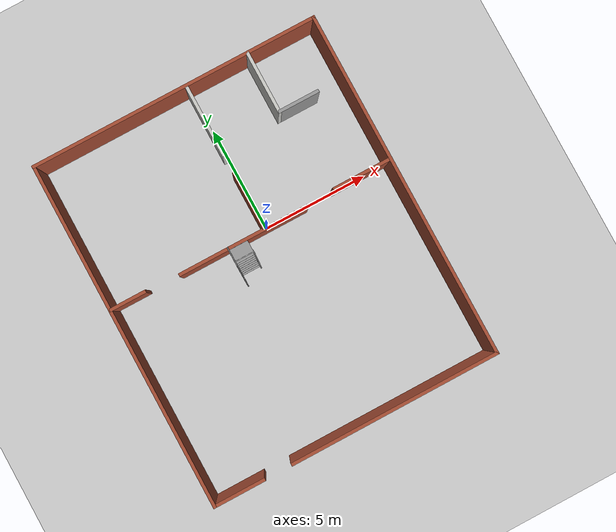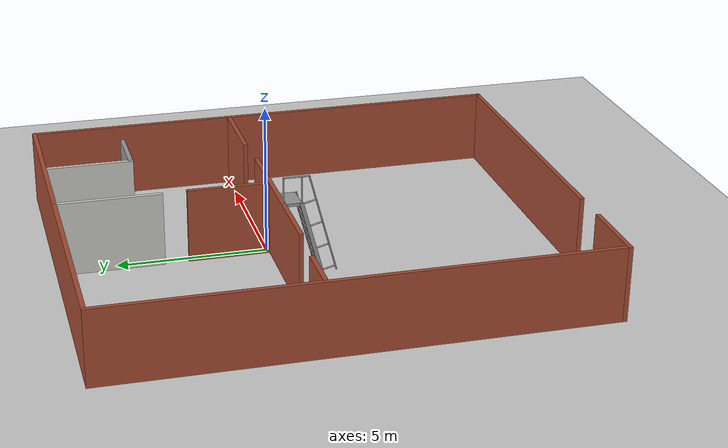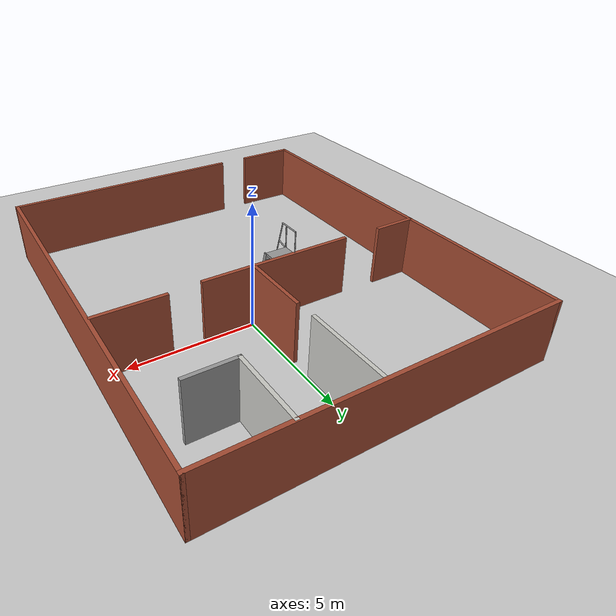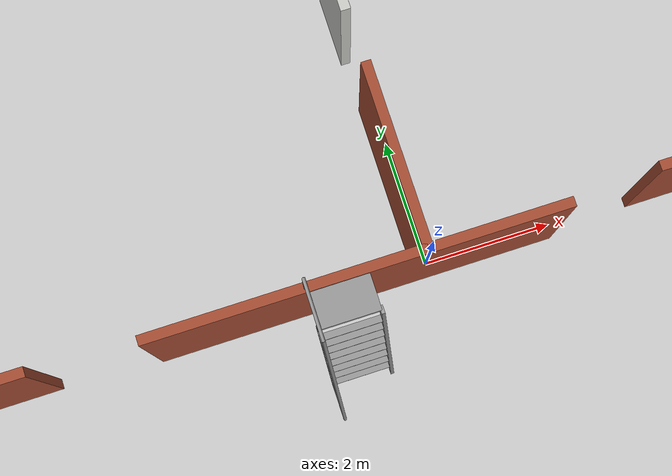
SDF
<sdf version="1.7">
 <world name="default">
  <light name="sun" type="directional">
   <pose>0 0 10 0 -0 0</pose>
   <diffuse>0.8 0.8 0.8 1</diffuse>
   <specular>0.2 0.2 0.2 1</specular>
   <attenuation>
    <range>1000</range>
    <constant>0.9</constant>
    <linear>0.01</linear>
    <quadratic>0.001</quadratic>
   </attenuation>
   <direction>-0.5 0.1 -0.9</direction>
   <spot><inner_angle>0</inner_angle><outer_angle>0</outer_angle><falloff>0</falloff></spot>
  </light>
  <model name="ground_plane">
   <static>1</static>
   <link name="link">
    <collision name="collision">
     <geometry><plane><normal>0 0 1</normal><size>100 100</size></plane></geometry>
     <surface>
      <contact><collide_bitmask>65535</collide_bitmask></contact>
      <friction><ode><mu>100</mu><mu2>50</mu2></ode></friction>
     </surface>
    </collision>
    <visual name="visual">
     <cast_shadows>0</cast_shadows>
     <geometry><plane><normal>0 0 1</normal><size>100 100</size></plane></geometry>
     <material>
      <script><uri>file://media/materials/scripts/gazebo.material</uri><name>Gazebo/Grey</name></script>
     </material>
    </visual>
   </link>
  </model>
  <gravity>0 0 -9.8</gravity>
  <magnetic_field>6e-06 2.3e-05 -4.2e-05</magnetic_field>
  <atmosphere type="adiabatic"/>
  <physics type="ode">
   <max_step_size>0.001</max_step_size>
   <real_time_factor>1</real_time_factor>
   <real_time_update_rate>1000</real_time_update_rate>
  </physics>
  <scene><ambient>0.4 0.4 0.4 1</ambient><background>0.7 0.7 0.7 1</background><shadows>1</shadows></scene>
  <spherical_coordinates>
   <surface_model>EARTH_WGS84</surface_model>
   <latitude_deg>0</latitude_deg>
   <longitude_deg>0</longitude_deg>
   <elevation>0</elevation>
   <heading_deg>0</heading_deg>
  </spherical_coordinates>
  <model name="TN_Robot_House">
   <pose>-0.769563 -1.27313 0 0 -0 0</pose>
   <link name="Wall_10">
    <collision name="Wall_10_Collision">
     <geometry><box><size>2.5 0.15 2.5</size></box></geometry>
     <pose>0 0 1.25 0 -0 0</pose>
    </collision>
    <visual name="Wall_10_Visual">
     <pose>0 0 1.25 0 -0 0</pose>
     <geometry><box><size>2.5 0.15 2.5</size></box></geometry>
     <material>
      <script><uri>file://media/materials/scripts/gazebo.material</uri><name>Gazebo/Bricks</name></script>
      <ambient>1 1 1 1</ambient>
     </material>
     <meta><layer>0</layer></meta>
    </visual>
    <pose>-5.625 -8.175 0 0 -0 0</pose>
   </link>
   <link name="Wall_12">
    <collision name="Wall_12_Collision">
     <geometry><box><size>10 0.15 2.5</size></box></geometry>
     <pose>0 0 1.25 0 -0 0</pose>
    </collision>
    <visual name="Wall_12_Visual">
     <pose>0 0 1.25 0 -0 0</pose>
     <geometry><box><size>10 0.15 2.5</size></box></geometry>
     <material>
      <script><uri>file://media/materials/scripts/gazebo.material</uri><name>Gazebo/Bricks</name></script>
      <ambient>1 1 1 1</ambient>
     </material>
     <meta><layer>0</layer></meta>
    </visual>
    <pose>1.875 -8.175 0 0 -0 3.14159</pose>
   </link>
   <link name="Wall_14">
    <collision name="Wall_14_Collision">
     <geometry><box><size>1.75 0.15 2.5</size></box></geometry>
     <pose>0 0 1.25 0 -0 0</pose>
    </collision>
    <visual name="Wall_14_Visual">
     <pose>0 0 1.25 0 -0 0</pose>
     <geometry><box><size>1.75 0.15 2.5</size></box></geometry>
     <material>
      <script><uri>file://media/materials/scripts/gazebo.material</uri><name>Gazebo/Bricks</name></script>
      <ambient>1 1 1 1</ambient>
     </material>
     <meta><layer>0</layer></meta>
    </visual>
    <pose>-5.95435 1.21128 0 0 -0 0</pose>
   </link>
   <link name="Wall_16">
    <collision name="Wall_16_Collision">
     <geometry><box><size>6.25 0.15 2.5</size></box></geometry>
     <pose>0 0 1.25 0 -0 0</pose>
    </collision>
    <visual name="Wall_16_Visual">
     <pose>0 0 1.25 0 -0 0</pose>
     <geometry><box><size>6.25 0.15 2.5</size></box></geometry>
     <material>
      <script><uri>file://media/materials/scripts/gazebo.material</uri><name>Gazebo/Bricks</name></script>
      <ambient>1 1 1 1</ambient>
     </material>
     <meta><layer>0</layer></meta>
    </visual>
    <pose>-0.397549 1.14092 0 0 -0 0</pose>
   </link>
   <link name="Wall_18">
    <collision name="Wall_18_Collision">
     <geometry><box><size>2.75 0.15 2.5</size></box></geometry>
     <pose>0 0 1.25 0 -0 0</pose>
    </collision>
    <visual name="Wall_18_Visual">
     <pose>0 0 1.25 0 -0 0</pose>
     <geometry><box><size>2.75 0.15 2.5</size></box></geometry>
     <material>
      <script><uri>file://media/materials/scripts/gazebo.material</uri><name>Gazebo/Bricks</name></script>
      <ambient>1 1 1 1</ambient>
     </material>
     <meta><layer>0</layer></meta>
    </visual>
    <pose>5.38071 1.24645 0 0 -0 0</pose>
   </link>
   <link name="Wall_22">
    <collision name="Wall_22_Collision">
     <geometry><box><size>3.5 0.15 2.5</size></box></geometry>
     <pose>0 0 1.25 0 -0 0</pose>
    </collision>
    <visual name="Wall_22_Visual">
     <pose>0 0 1.25 0 -0 0</pose>
     <geometry><box><size>3.5 0.15 2.5</size></box></geometry>
     <material>
      <script><uri>file://media/materials/scripts/gazebo.material</uri><name>Gazebo/CeilingTiled</name></script>
      <ambient>1 1 1 1</ambient>
     </material>
     <meta><layer>0</layer></meta>
    </visual>
    <pose>0.578652 6.45667 0 0 -0 -1.5708</pose>
   </link>
   <link name="Wall_24">
    <collision name="Wall_24_Collision">
     <geometry><box><size>2.75 0.15 2.5</size></box></geometry>
     <pose>0 0 1.25 0 -0 0</pose>
    </collision>
    <visual name="Wall_24_Visual">
     <pose>0 0 1.25 0 -0 0</pose>
     <geometry><box><size>2.75 0.15 2.5</size></box></geometry>
     <material>
      <script><uri>file://media/materials/scripts/gazebo.material</uri><name>Gazebo/Bricks</name></script>
      <ambient>1 1 1 1</ambient>
     </material>
     <meta><layer>0</layer></meta>
    </visual>
    <pose>0.61383 2.53986 0 0 -0 -1.5708</pose>
   </link>
   <link name="Wall_26">
    <collision name="Wall_26_Collision">
     <geometry><box><size>3 0.15 2.5</size></box></geometry>
     <pose>0 0 1.25 0 -0 0</pose>
    </collision>
    <visual name="Wall_26_Visual">
     <pose>0 0 1.25 0 -0 0</pose>
     <geometry><box><size>3 0.15 2.5</size></box></geometry>
     <material>
      <script><uri>file://media/materials/scripts/gazebo.material</uri><name>Gazebo/CeilingTiled</name></script>
      <ambient>1 1 1 1</ambient>
     </material>
     <meta><layer>0</layer></meta>
    </visual>
    <pose>3.56885 6.70667 0 0 -0 -1.5708</pose>
   </link>
   <link name="Wall_27">
    <collision name="Wall_27_Collision">
     <geometry><box><size>2 0.15 2.5</size></box></geometry>
     <pose>0 0 1.25 0 -0 0</pose>
    </collision>
    <visual name="Wall_27_Visual">
     <pose>0 0 1.25 0 -0 0</pose>
     <geometry><box><size>2 0.15 2.5</size></box></geometry>
     <material>
      <script><uri>file://media/materials/scripts/gazebo.material</uri><name>Gazebo/Grey</name></script>
      <ambient>1 1 1 1</ambient>
     </material>
     <meta><layer>0</layer></meta>
    </visual>
    <pose>4.49385 5.28167 0 0 -0 0</pose>
   </link>
   <link name="Wall_3">
    <collision name="Wall_3_Collision">
     <geometry><box><size>16.5 0.15 2.5</size></box></geometry>
     <pose>0 0 1.25 0 -0 0</pose>
    </collision>
    <visual name="Wall_3_Visual">
     <pose>0 0 1.25 0 -0 0</pose>
     <geometry><box><size>16.5 0.15 2.5</size></box></geometry>
     <material>
      <script><uri>file://media/materials/scripts/gazebo.material</uri><name>Gazebo/Bricks</name></script>
      <ambient>1 1 1 1</ambient>
     </material>
     <meta><layer>0</layer></meta>
    </visual>
    <pose>-6.8 0 0 0 -0 1.5708</pose>
   </link>
   <link name="Wall_4">
    <collision name="Wall_4_Collision">
     <geometry><box><size>13.75 0.15 2.5</size></box></geometry>
     <pose>0 0 1.25 0 -0 0</pose>
    </collision>
    <visual name="Wall_4_Visual">
     <pose>0 0 1.25 0 -0 0</pose>
     <geometry><box><size>13.75 0.15 2.5</size></box></geometry>
     <material>
      <script><uri>file://media/materials/scripts/gazebo.material</uri><name>Gazebo/Bricks</name></script>
      <ambient>1 1 1 1</ambient>
     </material>
     <meta><layer>0</layer></meta>
    </visual>
    <pose>-0 8.175 0 0 -0 0</pose>
   </link>
   <link name="Wall_5">
    <collision name="Wall_5_Collision">
     <geometry><box><size>16.5 0.15 2.5</size></box></geometry>
     <pose>0 0 1.25 0 -0 0</pose>
    </collision>
    <visual name="Wall_5_Visual">
     <pose>0 0 1.25 0 -0 0</pose>
     <geometry><box><size>16.5 0.15 2.5</size></box></geometry>
     <material>
      <script><uri>file://media/materials/scripts/gazebo.material</uri><name>Gazebo/Bricks</name></script>
      <ambient>1 1 1 1</ambient>
     </material>
     <meta><layer>0</layer></meta>
    </visual>
    <pose>6.8 0 0 0 -0 -1.5708</pose>
   </link>
   <static>1</static>
  </model>
  <model name="ladder_75deg_1rails">
   <static>1</static>
   <link name="step0">
    <pose>0 0.071453 0.266667 0 -0 0</pose>
    <inertial>
     <mass>9.75482</mass>
     <inertia>
      <ixx>0.00957124</ixx>
      <iyy>0.65963</iyy>
      <izz>0.666842</izz>
      <ixy>0</ixy>
      <ixz>0</ixz>
      <iyz>0</iyz>
     </inertia>
    </inertial>
    <collision name="collision"><geometry><box><size>0.9 0.1016 0.0381</size></box></geometry></collision>
    <visual name="visual">
     <geometry><box><size>0.9 0.1016 0.0381</size></box></geometry>
     <material>
      <script><uri>file://media/materials/scripts/gazebo.material</uri><name>Gazebo/Grey</name></script>
     </material>
    </visual>
   </link>
   <link name="step1">
    <pose>0 0.142906 0.533333 0 -0 0</pose>
    <inertial>
     <mass>9.75482</mass>
     <inertia>
      <ixx>0.00957124</ixx>
      <iyy>0.65963</iyy>
      <izz>0.666842</izz>
      <ixy>0</ixy>
      <ixz>0</ixz>
      <iyz>0</iyz>
     </inertia>
    </inertial>
    <collision name="collision"><geometry><box><size>0.9 0.1016 0.0381</size></box></geometry></collision>
    <visual name="visual">
     <geometry><box><size>0.9 0.1016 0.0381</size></box></geometry>
     <material>
      <script><uri>file://media/materials/scripts/gazebo.material</uri><name>Gazebo/Grey</name></script>
     </material>
    </visual>
   </link>
   <link name="step2">
    <pose>0 0.214359 0.8 0 -0 0</pose>
    <inertial>
     <mass>9.75482</mass>
     <inertia>
      <ixx>0.00957124</ixx>
      <iyy>0.65963</iyy>
      <izz>0.666842</izz>
      <ixy>0</ixy>
      <ixz>0</ixz>
      <iyz>0</iyz>
     </inertia>
    </inertial>
    <collision name="collision"><geometry><box><size>0.9 0.1016 0.0381</size></box></geometry></collision>
    <visual name="visual">
     <geometry><box><size>0.9 0.1016 0.0381</size></box></geometry>
     <material>
      <script><uri>file://media/materials/scripts/gazebo.material</uri><name>Gazebo/Grey</name></script>
     </material>
    </visual>
   </link>
   <link name="step3">
    <pose>0 0.285812 1.06667 0 -0 0</pose>
    <inertial>
     <mass>9.75482</mass>
     <inertia>
      <ixx>0.00957124</ixx>
      <iyy>0.65963</iyy>
      <izz>0.666842</izz>
      <ixy>0</ixy>
      <ixz>0</ixz>
      <iyz>0</iyz>
     </inertia>
    </inertial>
    <collision name="collision"><geometry><box><size>0.9 0.1016 0.0381</size></box></geometry></collision>
    <visual name="visual">
     <geometry><box><size>0.9 0.1016 0.0381</size></box></geometry>
     <material>
      <script><uri>file://media/materials/scripts/gazebo.material</uri><name>Gazebo/Grey</name></script>
     </material>
    </visual>
   </link>
   <link name="step4">
    <pose>0 0.357266 1.33333 0 -0 0</pose>
    <inertial>
     <mass>9.75482</mass>
     <inertia>
      <ixx>0.00957124</ixx>
      <iyy>0.65963</iyy>
      <izz>0.666842</izz>
      <ixy>0</ixy>
      <ixz>0</ixz>
      <iyz>0</iyz>
     </inertia>
    </inertial>
    <collision name="collision"><geometry><box><size>0.9 0.1016 0.0381</size></box></geometry></collision>
    <visual name="visual">
     <geometry><box><size>0.9 0.1016 0.0381</size></box></geometry>
     <material>
      <script><uri>file://media/materials/scripts/gazebo.material</uri><name>Gazebo/Grey</name></script>
     </material>
    </visual>
   </link>
   <link name="step5">
    <pose>0 0.428719 1.6 0 -0 0</pose>
    <inertial>
     <mass>9.75482</mass>
     <inertia>
      <ixx>0.00957124</ixx>
      <iyy>0.65963</iyy>
      <izz>0.666842</izz>
      <ixy>0</ixy>
      <ixz>0</ixz>
      <iyz>0</iyz>
     </inertia>
    </inertial>
    <collision name="collision"><geometry><box><size>0.9 0.1016 0.0381</size></box></geometry></collision>
    <visual name="visual">
     <geometry><box><size>0.9 0.1016 0.0381</size></box></geometry>
     <material>
      <script><uri>file://media/materials/scripts/gazebo.material</uri><name>Gazebo/Grey</name></script>
     </material>
    </visual>
   </link>
   <link name="step6">
    <pose>0 0.500172 1.86667 0 -0 0</pose>
    <inertial>
     <mass>9.75482</mass>
     <inertia>
      <ixx>0.00957124</ixx>
      <iyy>0.65963</iyy>
      <izz>0.666842</izz>
      <ixy>0</ixy>
      <ixz>0</ixz>
      <iyz>0</iyz>
     </inertia>
    </inertial>
    <collision name="collision"><geometry><box><size>0.9 0.1016 0.0381</size></box></geometry></collision>
    <visual name="visual">
     <geometry><box><size>0.9 0.1016 0.0381</size></box></geometry>
     <material>
      <script><uri>file://media/materials/scripts/gazebo.material</uri><name>Gazebo/Grey</name></script>
     </material>
    </visual>
   </link>
   <link name="step7">
    <pose>0 0.571625 2.13333 0 -0 0</pose>
    <inertial>
     <mass>9.75482</mass>
     <inertia>
      <ixx>0.00957124</ixx>
      <iyy>0.65963</iyy>
      <izz>0.666842</izz>
      <ixy>0</ixy>
      <ixz>0</ixz>
      <iyz>0</iyz>
     </inertia>
    </inertial>
    <collision name="collision"><geometry><box><size>0.9 0.1016 0.0381</size></box></geometry></collision>
    <visual name="visual">
     <geometry><box><size>0.9 0.1016 0.0381</size></box></geometry>
     <material>
      <script><uri>file://media/materials/scripts/gazebo.material</uri><name>Gazebo/Grey</name></script>
     </material>
    </visual>
   </link>
   <link name="landing">
    <pose>0 0.943078 2.4 0 -0 0</pose>
    <inertial>
     <mass>57.6072</mass>
     <inertia><ixx>1.73518</ixx><iyy>3.89545</iyy><izz>5.6167</izz><ixy>0</ixy><ixz>0</ixz><iyz>0</iyz></inertia>
    </inertial>
    <collision name="collision"><geometry><box><size>0.9 0.6 0.1016</size></box></geometry></collision>
    <visual name="visual">
     <geometry><box><size>0.9 0.6 0.1016</size></box></geometry>
     <material>
      <script><uri>file://media/materials/scripts/gazebo.material</uri><name>Gazebo/Grey</name></script>
     </material>
    </visual>
   </link>
   <link name="left_side_wall">
    <pose>-0.45 0.321539 1.2 1.309 -0 0</pose>
    <collision name="collision"><geometry><box><size>0.0508 2.56466 0.13</size></box></geometry></collision>
    <visual name="visual">
     <geometry><box><size>0.0508 2.56466 0.13</size></box></geometry>
     <material>
      <script><uri>file://media/materials/scripts/gazebo.material</uri><name>Gazebo/Grey</name></script>
     </material>
    </visual>
   </link>
   <link name="right_side_wall">
    <pose>0.45 0.321539 1.2 1.309 -0 0</pose>
    <collision name="collision"><geometry><box><size>0.0508 2.56466 0.13</size></box></geometry></collision>
    <visual name="visual">
     <geometry><box><size>0.0508 2.56466 0.13</size></box></geometry>
     <material>
      <script><uri>file://media/materials/scripts/gazebo.material</uri><name>Gazebo/Grey</name></script>
     </material>
    </visual>
   </link>
   <link name="left_railing_long">
    <pose>-0.45 -0.053461 1.66651 -0.261799 0 0</pose>
    <collision name="collision">
     <geometry><cylinder><radius>0.02413</radius><length>3.51529</length></cylinder></geometry>
    </collision>
    <visual name="visual">
     <geometry><cylinder><radius>0.02413</radius><length>3.51529</length></cylinder></geometry>
     <material>
      <script><uri>file://media/materials/scripts/gazebo.material</uri><name>Gazebo/Grey</name></script>
     </material>
    </visual>
   </link>
   <link name="left_railing_upright0">
    <pose>-0.45 -0.210089 0.056293 1.309 -0 0</pose>
    <collision name="collision">
     <geometry><cylinder><radius>0.02413</radius><length>0.482963</length></cylinder></geometry>
    </collision>
    <visual name="visual">
     <geometry><cylinder><radius>0.02413</radius><length>0.482963</length></cylinder></geometry>
     <material>
      <script><uri>file://media/materials/scripts/gazebo.material</uri><name>Gazebo/Grey</name></script>
     </material>
    </visual>
   </link>
   <link name="left_railing_upright1">
    <pose>-0.45 0.00427 0.856293 1.309 -0 0</pose>
    <collision name="collision">
     <geometry><cylinder><radius>0.02413</radius><length>0.482963</length></cylinder></geometry>
    </collision>
    <visual name="visual">
     <geometry><cylinder><radius>0.02413</radius><length>0.482963</length></cylinder></geometry>
     <material>
      <script><uri>file://media/materials/scripts/gazebo.material</uri><name>Gazebo/Grey</name></script>
     </material>
    </visual>
   </link>
   <link name="left_railing_upright2">
    <pose>-0.45 0.21863 1.65629 1.309 -0 0</pose>
    <collision name="collision">
     <geometry><cylinder><radius>0.02413</radius><length>0.482963</length></cylinder></geometry>
    </collision>
    <visual name="visual">
     <geometry><cylinder><radius>0.02413</radius><length>0.482963</length></cylinder></geometry>
     <material>
      <script><uri>file://media/materials/scripts/gazebo.material</uri><name>Gazebo/Grey</name></script>
     </material>
    </visual>
   </link>
   <link name="left_railing_upright3">
    <pose>-0.45 0.432989 2.45629 1.309 -0 0</pose>
    <collision name="collision">
     <geometry><cylinder><radius>0.02413</radius><length>0.482963</length></cylinder></geometry>
    </collision>
    <visual name="visual">
     <geometry><cylinder><radius>0.02413</radius><length>0.482963</length></cylinder></geometry>
     <material>
      <script><uri>file://media/materials/scripts/gazebo.material</uri><name>Gazebo/Grey</name></script>
     </material>
    </visual>
   </link>
   <link name="left_railing_landing_top">
    <pose>-0.45 0.818078 3.35714 1.5708 -0 0</pose>
    <collision name="collision">
     <geometry><cylinder><radius>0.02413</radius><length>0.87413</length></cylinder></geometry>
    </collision>
    <visual name="visual">
     <geometry><cylinder><radius>0.02413</radius><length>0.87413</length></cylinder></geometry>
     <material>
      <script><uri>file://media/materials/scripts/gazebo.material</uri><name>Gazebo/Grey</name></script>
     </material>
    </visual>
   </link>
   <link name="left_railing_landing_upright_0">
    <pose>-0.45 0.643078 2.86651 0 -0 0</pose>
    <collision name="collision">
     <geometry><cylinder><radius>0.02413</radius><length>0.933013</length></cylinder></geometry>
    </collision>
    <visual name="visual">
     <geometry><cylinder><radius>0.02413</radius><length>0.933013</length></cylinder></geometry>
     <material>
      <script><uri>file://media/materials/scripts/gazebo.material</uri><name>Gazebo/Grey</name></script>
     </material>
    </visual>
   </link>
   <link name="left_railing_landing_upright_1">
    <pose>-0.45 1.24308 2.86651 0 -0 0</pose>
    <collision name="collision">
     <geometry><cylinder><radius>0.02413</radius><length>0.933013</length></cylinder></geometry>
    </collision>
    <visual name="visual">
     <geometry><cylinder><radius>0.02413</radius><length>0.933013</length></cylinder></geometry>
     <material>
      <script><uri>file://media/materials/scripts/gazebo.material</uri><name>Gazebo/Grey</name></script>
     </material>
    </visual>
   </link>
   <pose>-1.46669 -1.38495 0 0 -0 0</pose>
  </model>
  <model name="navbot"><static>0</static><pose>-1.63729 -2.97467 0 0 -0 0</pose></model>
 </world>
</sdf>
